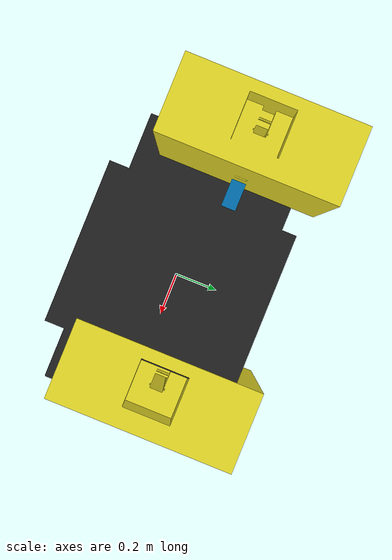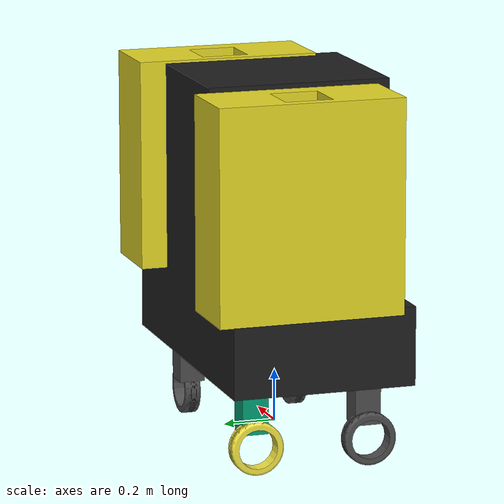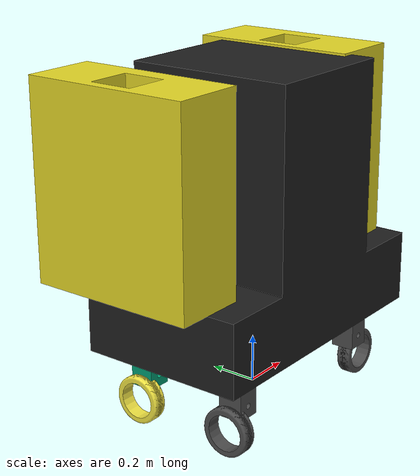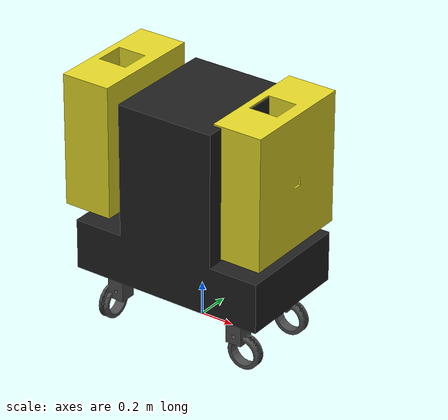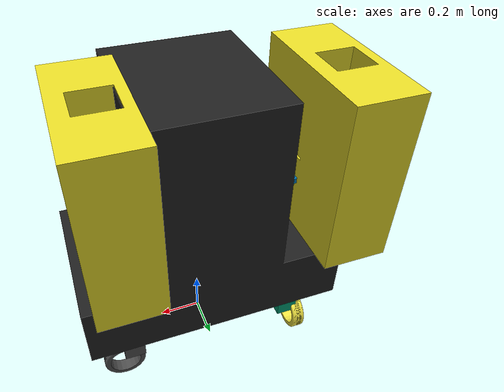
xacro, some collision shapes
<?xml version="1.0" ?>
<robot name="turtlebot3_waffle" xmlns:xacro="http://ros.org/wiki/xacro">
  <xacro:include filename="$(find covid_robot_description)/urdf/covid_robot.gazebo.xacro"/>

  <xacro:property name="r200_cam_rgb_px" value="0.005"/>
  <xacro:property name="r200_cam_rgb_py" value="0.018"/>
  <xacro:property name="r200_cam_rgb_pz" value="0.013"/>
  <xacro:property name="r200_cam_depth_offset" value="0.01"/>

  <link name="base_footprint"/>

  <joint name="base_joint" type="fixed">
    <parent link="base_footprint"/>
    <child link="base_link" />
    <origin xyz="0 0 0.01" rpy="0 0 0"/>
  </joint>

  <link name="base_link">
    <visual>
      <origin xyz="0 0 0.25" rpy="0 0 0"/>
      <geometry>
        <mesh filename="package://covid_robot_description/meshes/bases/covid_robot_body.stl" scale="0.001 0.001 0.001"/>
      </geometry>
      <material name="black"/>
    </visual>

    <collision>
      <origin xyz="0.0 0 0.047" rpy="0 0 0"/>
      <geometry>
        <box size="1.0 1.0 0.093"/>
      </geometry>
    </collision>

    <inertial>
      <origin xyz="0 0 0" rpy="0 0 0"/>
      <mass value="1.3729096e+00"/>
      <inertia ixx="8.7002718e-03" ixy="-4.7576583e-05" ixz="1.1160499e-04"
               iyy="8.6195418e-03" iyz="-3.5422299e-06"
               izz="1.4612727e-02" />
    </inertial>
  </link>

  <joint name="wheel_left_joint_4_steer" type="fixed">
    <parent link="base_link"/>
    <child link="wheel_left_link_4_steer"/>
    <origin xyz="-0.40 0.22 -0.03" rpy="0 0 0"/>
  </joint>

  <link name="wheel_left_link_4_steer">
    <visual>
      <origin xyz="0 0 0.1" rpy="1.57 0 0"/>
      <geometry>
        <mesh filename="package://covid_robot_description/meshes/wheels/steering_motor.stl" scale="0.001 0.001 0.001"/>
      </geometry>
      <material name="dark"/>
    </visual>

    <collision>
      <origin xyz="0 0 0" rpy="0 0 0"/>
    </collision>
  </link>

  <joint name="wheel_left_joint_4" type="continuous">
    <parent link="base_link"/>
    <child link="wheel_left_link_4"/>
    <origin xyz="-0.45 0.22 0.023" rpy="0 1.57 0"/>
    <axis xyz="0 0 1"/>
  </joint>

  <link name="wheel_left_link_4">
    <visual>
      <origin xyz="0 0 0.02" rpy="1.57 0 0"/>
      <geometry>
        <mesh filename="package://covid_robot_description/meshes/wheels/covid_robot_tire.stl" scale="0.001 0.001 0.001"/>
      </geometry>
      <material name="dark"/>
    </visual>

    <collision>
      <origin xyz="0 0 0" rpy="0 0 0"/>
      <geometry>
        <cylinder length="0.018" radius="0.033"/>
      </geometry>
    </collision>

    <inertial>
      <origin xyz="0 0 0" />
      <mass value="2.8498940e-02" />
      <inertia ixx="1.1175580e-05" ixy="-4.2369783e-11" ixz="-5.9381719e-09"
               iyy="1.1192413e-05" iyz="-1.4400107e-11"
               izz="2.0712558e-05" />
      </inertial>
  </link>

  <joint name="wheel_left_joint_steer" type="fixed">
    <parent link="base_link"/>
    <child link="wheel_left_link_steer"/>
    <origin xyz="0.40 0.22 -0.03" rpy="0 0 0"/>
  </joint>

  <link name="wheel_left_link_steer">
      <visual>
      <origin xyz="0 0 0.1" rpy="1.57 0 0"/>
      <geometry>
        <mesh filename="package://covid_robot_description/meshes/wheels/steering_motor.stl" scale="0.001 0.001 0.001"/>
      </geometry>
      <material name="dark"/>
    </visual>

    <collision>
      <origin xyz="0 0 0" rpy="0 0 0"/>
    </collision>

  </link>

  <joint name="wheel_left_joint" type="continuous">
    <parent link="base_link"/>
    <child link="wheel_left_link"/>
    <origin xyz="0.45 0.22 0.023" rpy="-1.57 0 0"/>
    <axis xyz="0 0 1"/>
  </joint>

  <link name="wheel_left_link">
    <visual>
      <origin xyz="0 0 0.02" rpy="1.57 0 0"/>
      <geometry>
        <mesh filename="package://covid_robot_description/meshes/wheels/covid_robot_tire.stl" scale="0.001 0.001 0.001"/>
      </geometry>
      <material name="dark"/>
    </visual>

    <collision>
      <origin xyz="0 0 0" rpy="0 0 0"/>
      <geometry>
        <cylinder length="0.018" radius="0.033"/>
      </geometry>
    </collision>

    <inertial>
      <origin xyz="0 0 0" />
      <mass value="2.8498940e-02" />
      <inertia ixx="1.1175580e-05" ixy="-4.2369783e-11" ixz="-5.9381719e-09"
               iyy="1.1192413e-05" iyz="-1.4400107e-11"
               izz="2.0712558e-05" />
      </inertial>
  </link>

  <joint name="wheel_right_joint_steer" type="fixed">
    <parent link="base_link"/>
    <child link="wheel_right_link_steer"/>
    <origin xyz="0.40 -0.22 -0.03" rpy="0 0 0"/>
  </joint>

  <link name="wheel_right_link_steer">
    <visual>
      <origin xyz="0 0 0.1" rpy="1.57 0 0"/>
      <geometry>
        <mesh filename="package://covid_robot_description/meshes/wheels/steering_motor.stl" scale="0.001 0.001 0.001"/>
      </geometry>
      <material name="dark"/>
    </visual>

    <collision>
      <origin xyz="0 0 0" rpy="0 0 0"/>
    </collision>
  </link>

  <joint name="wheel_right_joint" type="continuous">
    <parent link="base_link"/>
    <child link="wheel_right_link"/>
    <origin xyz="0.45 -0.22 0.023" rpy="-1.57 0 0"/>
    <axis xyz="0 0 1"/>
  </joint>

  <link name="wheel_right_link">
    <visual>
      <origin xyz="0 0 0.02" rpy="1.57 0 0"/>
      <geometry>
        <mesh filename="package://covid_robot_description/meshes/wheels/covid_robot_tire.stl" scale="0.001 0.001 0.001"/>
      </geometry>
      <material name="dark"/>
    </visual>

    <collision>
      <origin xyz="0 0 0" rpy="0 0 0"/>
      <geometry>
        <cylinder length="0.018" radius="0.033"/>
      </geometry>
    </collision>

    <inertial>
      <origin xyz="0 0 0" />
      <mass value="2.8498940e-02" />
      <inertia ixx="1.1175580e-05" ixy="-4.2369783e-11" ixz="-5.9381719e-09"
               iyy="1.1192413e-05" iyz="-1.4400107e-11"
               izz="2.0712558e-05" />
      </inertial>
  </link>

  <joint name="wheel_right_joint_1_steer" type="fixed">
    <parent link="base_link"/>
    <child link="wheel_right_link_1_steer"/>
    <origin xyz="-0.40 -0.22 -0.03" rpy="0 0 0"/>
  </joint>

  <link name="wheel_right_link_1_steer">
    <visual>
      <origin xyz="0 0 0.1" rpy="1.57 0 0"/>
      <geometry>
        <mesh filename="package://covid_robot_description/meshes/wheels/steering_motor.stl" scale="0.001 0.001 0.001"/>
      </geometry>
      <material name="dark"/>
    </visual>

    <collision>
      <origin xyz="0 0 0" rpy="0 0 0"/>
    </collision>

  </link>

  <joint name="wheel_right_joint_1" type="continuous">
    <parent link="base_link"/>
    <child link="wheel_right_link_1"/>
    <origin xyz="-0.45 -0.22 0.023" rpy="0 1.57 0"/>
    <axis xyz="0 0 1"/>
  </joint>

  <link name="wheel_right_link_1">
    <visual>
      <origin xyz="0 0 0.02" rpy="1.57 0 0"/>
      <geometry>
        <mesh filename="package://covid_robot_description/meshes/wheels/covid_robot_tire.stl" scale="0.001 0.001 0.001"/>
      </geometry>
    </visual>

    <collision>
      <origin xyz="0 0 0" rpy="0 0 0"/>
      <geometry>
        <cylinder length="0.018" radius="0.033"/>
      </geometry>
    </collision>

    <inertial>
      <origin xyz="0 0 0" />
      <mass value="2.8498940e-02" />
      <inertia ixx="1.1175580e-05" ixy="-4.2369783e-11" ixz="-5.9381719e-09"
               iyy="1.1192413e-05" iyz="-1.4400107e-11"
               izz="2.0712558e-05" />
      </inertial>
  </link>

  <joint name="body_side_left" type="fixed">
    <parent link="base_link"/>
    <child link="body_side_left"/>
    <origin xyz="-0.30 0.0 0.460" rpy="0 0 0"/>
  </joint>

  <link name="body_side_left">
    <visual>
      <origin xyz="-0.3 0.1 0.1" rpy="1.57 0 0"/>
      <geometry>
        <mesh filename="package://covid_robot_description/meshes/bases/body_side.stl" scale="0.001 0.001 0.001"/>
      </geometry>
      <material name="dark"/>
    </visual>

    <collision>
      <origin xyz="0 0 0" rpy="0 0 0"/>
    </collision>
  </link>

  <joint name="body_side_right" type="fixed">
    <parent link="base_link"/>
    <child link="body_side_right"/>
    <origin xyz="0.30 0.0 0.460" rpy="0 0 0"/>
  </joint>

  <link name="body_side_right">
    <visual>
      <origin xyz="0.1 0.1 0.1" rpy="1.57 0 0"/>
      <geometry>
        <mesh filename="package://covid_robot_description/meshes/bases/body_side.stl" scale="0.001 0.001 0.001"/>
      </geometry>
    </visual>

    <collision>
      <origin xyz="0 0 0" rpy="0 0 0"/>
    </collision>
  </link>

  <joint name="body_side_rack_left" type="fixed">
    <parent link="base_link"/>
    <child link="body_side_rack_left"/>
    <origin xyz="-0.30 0.0 0.835" rpy="0 1.57 1.57"/>
  </joint>

  <link name="body_side_rack_left">
    <visual>
      <origin xyz="0 0 0.1" rpy="1.57 0 0"/>
      <geometry>
        <mesh filename="package://covid_robot_description/meshes/bases/body_side_rack.stl" scale="0.001 0.001 0.001"/>
      </geometry>
      <material name="dark"/>
    </visual>

    <collision>
      <origin xyz="0 0 0" rpy="0 0 0"/>
    </collision>
  </link>

  <joint name="caster_back_right_joint" type="fixed">
    <parent link="base_link"/>
    <child link="caster_back_right_link"/>
    <origin xyz="-0.177 -0.064 -0.004" rpy="-1.57 0 0"/>
  </joint>

  <link name="caster_back_right_link">
    <collision>
      <origin xyz="0 0.001 0" rpy="0 0 0"/>
      <geometry>
        <box size="0.030 0.009 0.020"/>
      </geometry>
    </collision>

    <inertial>
      <origin xyz="0 0 0" />
      <mass value="0.005" />
      <inertia ixx="0.001" ixy="0.0" ixz="0.0"
               iyy="0.001" iyz="0.0"
               izz="0.001" />
    </inertial>
  </link>

  <joint name="caster_back_left_joint" type="fixed">
    <parent link="base_link"/>
    <child link="caster_back_left_link"/>
    <origin xyz="-0.177 0.064 -0.004" rpy="-1.57 0 0"/>
  </joint>

  <link name="caster_back_left_link">
    <collision>
      <origin xyz="0 0.001 0" rpy="0 0 0"/>
      <geometry>
        <box size="0.030 0.009 0.020"/>
      </geometry>
    </collision>

    <inertial>
      <origin xyz="0 0 0" />
      <mass value="0.005" />
      <inertia ixx="0.001" ixy="0.0" ixz="0.0"
               iyy="0.001" iyz="0.0"
               izz="0.001" />
    </inertial>
  </link>

  <joint name="imu_joint" type="fixed">
    <parent link="base_link"/>
    <child link="imu_link"/>
    <origin xyz="0.0 0 0.068" rpy="0 0 0"/>
  </joint>

  <link name="imu_link"/>

  <joint name="scan_joint" type="fixed">
    <parent link="base_link"/>
    <child link="base_scan"/>
    <origin xyz="-0.064 0 0.2" rpy="0 0 1.57"/>
  </joint>

  <link name="base_scan">
    <visual>
      <origin xyz="0 0 0" rpy="0 0 0"/>
      <geometry>
        <mesh filename="package://turtlebot3_description/meshes/sensors/lds.stl" scale="0.001 0.001 0.001"/>
      </geometry>
      <material name="dark"/>
    </visual>

    <collision>
      <origin xyz="0.015 0 -0.0065" rpy="0 0 0"/>
      <geometry>
        <cylinder length="0.0315" radius="0.055"/>
      </geometry>
    </collision>

    <inertial>
      <mass value="0.114" />
      <origin xyz="0 0 0" />
      <inertia ixx="0.001" ixy="0.0" ixz="0.0"
               iyy="0.001" iyz="0.0"
               izz="0.001" />
    </inertial>
  </link>

</robot>
